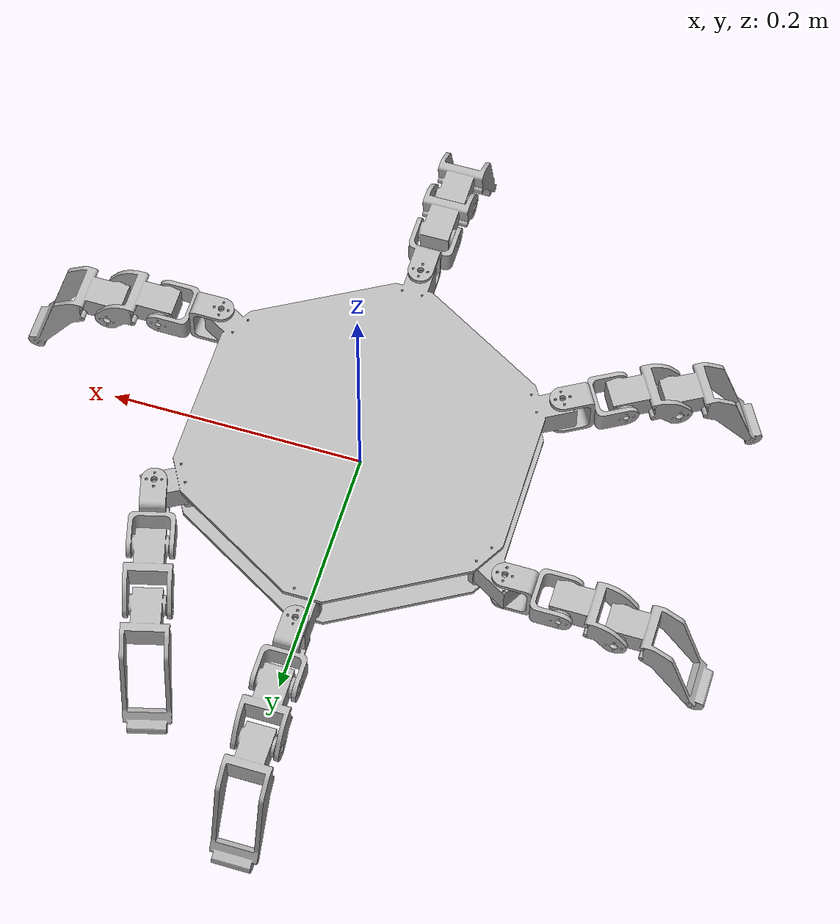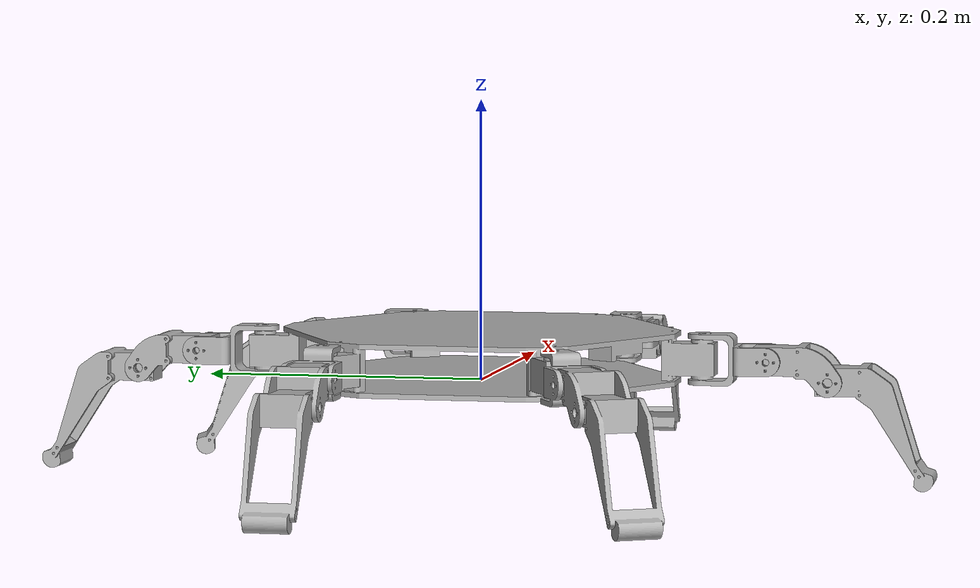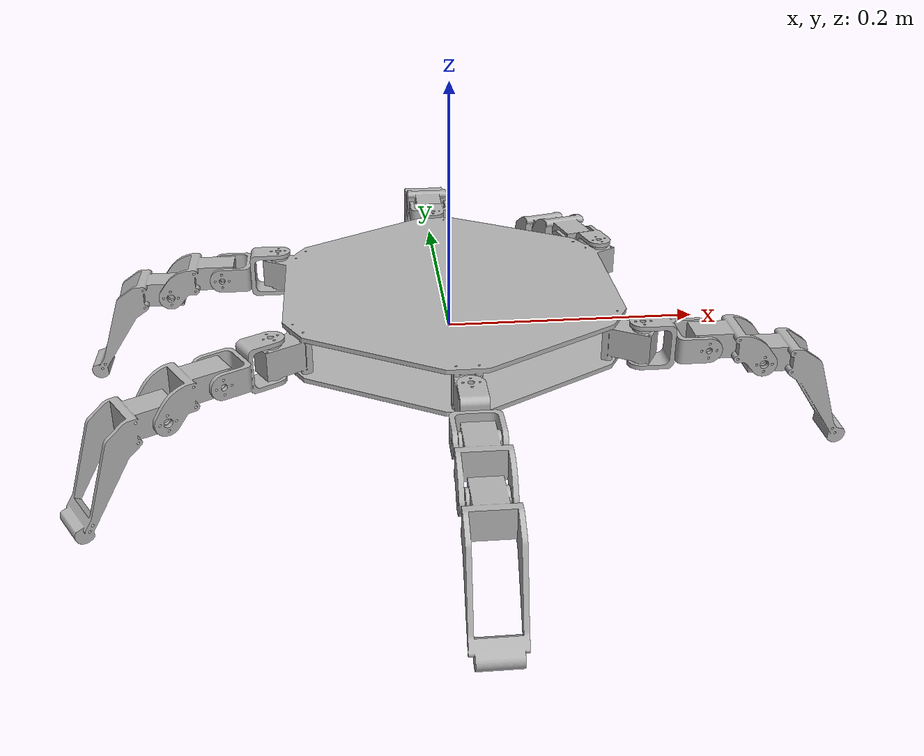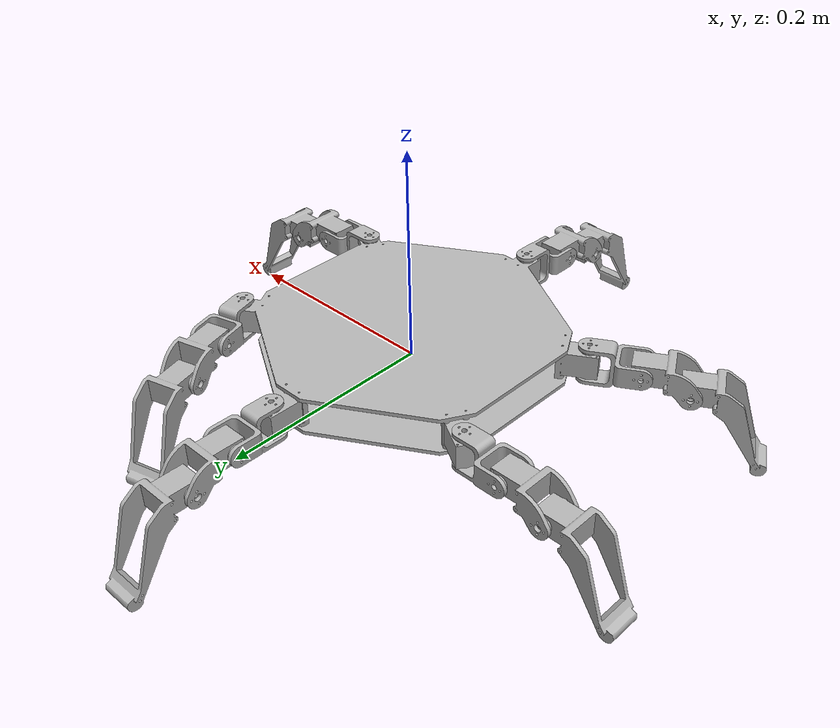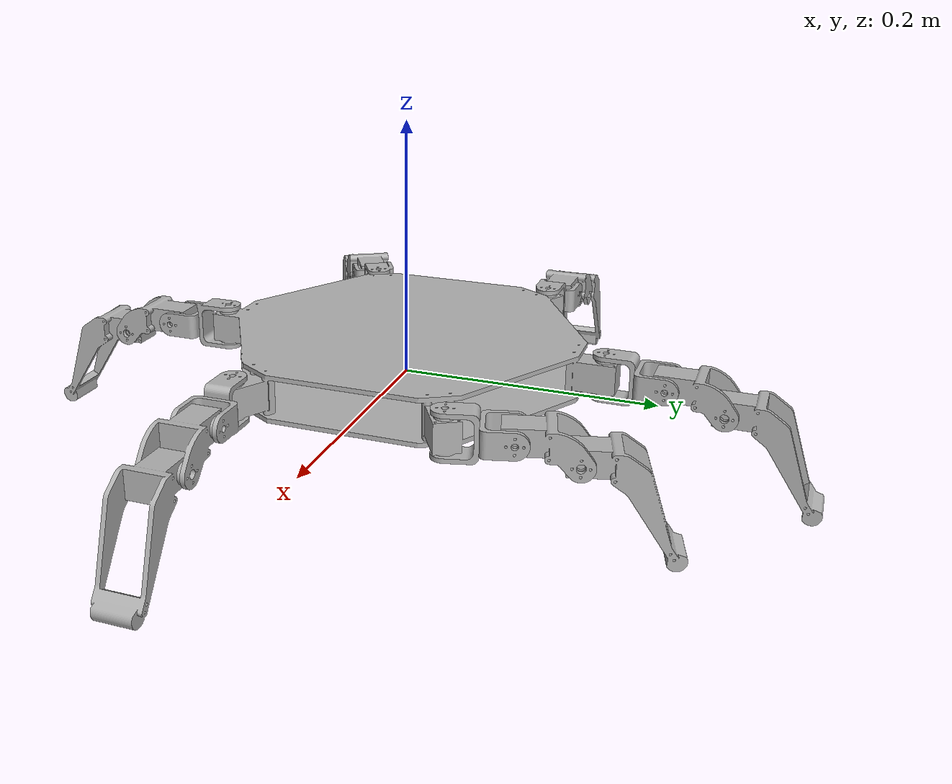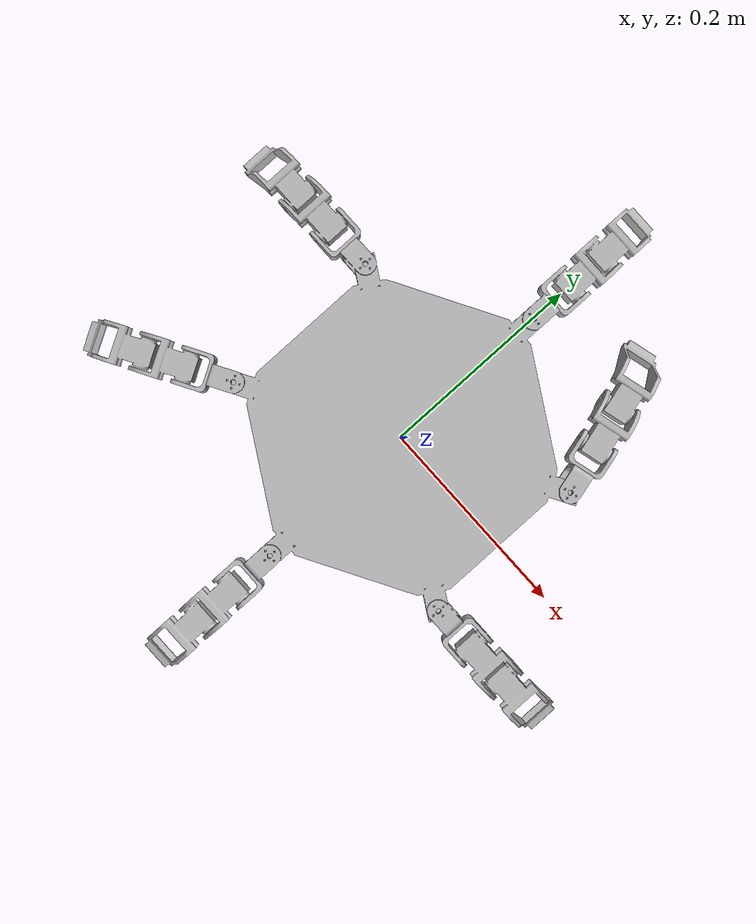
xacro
<?xml version="1.0" ?>
<robot name="(Unsaved)" xmlns:xacro="http://www.ros.org/wiki/xacro">

<xacro:include filename="$(find (Unsaved)_description)/urdf/materials.xacro" />
<xacro:include filename="$(find (Unsaved)_description)/urdf/(Unsaved).trans" />
<xacro:include filename="$(find (Unsaved)_description)/urdf/(Unsaved).gazebo" />
<link name="base_link">
  <inertial>
    <origin xyz="6.436791772353176e-13 8.68856977186487e-06 0.08813353689622172" rpy="0 0 0"/>
    <mass value="4.063687233537527"/>
    <inertia ixx="0.025602" iyy="0.025607" izz="0.049318" ixy="0.0" iyz="-0.0" ixz="0.0"/>
  </inertial>
  <visual>
    <origin xyz="0 0 0" rpy="0 0 0"/>
    <geometry>
      <mesh filename="package://(Unsaved)_description/meshes/base_link.stl" scale="0.001 0.001 0.001"/>
    </geometry>
    <material name="silver"/>
  </visual>
  <collision>
    <origin xyz="0 0 0" rpy="0 0 0"/>
    <geometry>
      <mesh filename="package://(Unsaved)_description/meshes/base_link.stl" scale="0.001 0.001 0.001"/>
    </geometry>
  </collision>
</link>

<link name="Coxa_6">
  <inertial>
    <origin xyz="-0.020352080722285504 -0.011750115472622377 -0.05563100010386053" rpy="0 0 0"/>
    <mass value="0.09724812532903056"/>
    <inertia ixx="2.5e-05" iyy="3e-05" izz="3.2e-05" ixy="-4e-06" iyz="0.0" ixz="0.0"/>
  </inertial>
  <visual>
    <origin xyz="0.137878 0.079604 -0.143762" rpy="0 0 0"/>
    <geometry>
      <mesh filename="package://(Unsaved)_description/meshes/Coxa_6.stl" scale="0.001 0.001 0.001"/>
    </geometry>
    <material name="silver"/>
  </visual>
  <collision>
    <origin xyz="0.137878 0.079604 -0.143762" rpy="0 0 0"/>
    <geometry>
      <mesh filename="package://(Unsaved)_description/meshes/Coxa_6.stl" scale="0.001 0.001 0.001"/>
    </geometry>
  </collision>
</link>

<link name="Coxa_1">
  <inertial>
    <origin xyz="-5.562159473445608e-08 -0.023500327284672773 -0.05563100010386053" rpy="0 0 0"/>
    <mass value="0.09724812532903056"/>
    <inertia ixx="3.2e-05" iyy="2.2e-05" izz="3.2e-05" ixy="0.0" iyz="0.0" ixz="-0.0"/>
  </inertial>
  <visual>
    <origin xyz="-0.0 0.159208 -0.143762" rpy="0 0 0"/>
    <geometry>
      <mesh filename="package://(Unsaved)_description/meshes/Coxa_1.stl" scale="0.001 0.001 0.001"/>
    </geometry>
    <material name="silver"/>
  </visual>
  <collision>
    <origin xyz="-0.0 0.159208 -0.143762" rpy="0 0 0"/>
    <geometry>
      <mesh filename="package://(Unsaved)_description/meshes/Coxa_1.stl" scale="0.001 0.001 0.001"/>
    </geometry>
  </collision>
</link>

<link name="Coxa_2">
  <inertial>
    <origin xyz="0.02350045593286834 -2.1922543673447148e-07 -0.05563100010386053" rpy="0 0 0"/>
    <mass value="0.09724812532903056"/>
    <inertia ixx="2.2e-05" iyy="3.2e-05" izz="3.2e-05" ixy="-0.0" iyz="-0.0" ixz="-0.0"/>
  </inertial>
  <visual>
    <origin xyz="-0.137878 0.079604 -0.143762" rpy="0 0 0"/>
    <geometry>
      <mesh filename="package://(Unsaved)_description/meshes/Coxa_2.stl" scale="0.001 0.001 0.001"/>
    </geometry>
    <material name="silver"/>
  </visual>
  <collision>
    <origin xyz="-0.137878 0.079604 -0.143762" rpy="0 0 0"/>
    <geometry>
      <mesh filename="package://(Unsaved)_description/meshes/Coxa_2.stl" scale="0.001 0.001 0.001"/>
    </geometry>
  </collision>
</link>

<link name="Coxa_3">
  <inertial>
    <origin xyz="0.02035208072228556 0.011750115472622377 -0.05563100010386053" rpy="0 0 0"/>
    <mass value="0.09724812532903056"/>
    <inertia ixx="2.5e-05" iyy="3e-05" izz="3.2e-05" ixy="-4e-06" iyz="-0.0" ixz="-0.0"/>
  </inertial>
  <visual>
    <origin xyz="-0.137878 -0.079604 -0.143762" rpy="0 0 0"/>
    <geometry>
      <mesh filename="package://(Unsaved)_description/meshes/Coxa_3.stl" scale="0.001 0.001 0.001"/>
    </geometry>
    <material name="silver"/>
  </visual>
  <collision>
    <origin xyz="-0.137878 -0.079604 -0.143762" rpy="0 0 0"/>
    <geometry>
      <mesh filename="package://(Unsaved)_description/meshes/Coxa_3.stl" scale="0.001 0.001 0.001"/>
    </geometry>
  </collision>
</link>

<link name="Coxa_4">
  <inertial>
    <origin xyz="5.562159475807144e-08 0.02350032728467269 -0.05563100010386053" rpy="0 0 0"/>
    <mass value="0.09724812532903056"/>
    <inertia ixx="3.2e-05" iyy="2.2e-05" izz="3.2e-05" ixy="0.0" iyz="-0.0" ixz="0.0"/>
  </inertial>
  <visual>
    <origin xyz="-0.0 -0.159208 -0.143762" rpy="0 0 0"/>
    <geometry>
      <mesh filename="package://(Unsaved)_description/meshes/Coxa_4.stl" scale="0.001 0.001 0.001"/>
    </geometry>
    <material name="silver"/>
  </visual>
  <collision>
    <origin xyz="-0.0 -0.159208 -0.143762" rpy="0 0 0"/>
    <geometry>
      <mesh filename="package://(Unsaved)_description/meshes/Coxa_4.stl" scale="0.001 0.001 0.001"/>
    </geometry>
  </collision>
</link>

<link name="Coxa_5">
  <inertial>
    <origin xyz="-0.02350045593286834 2.1922543678998263e-07 -0.05563100010386053" rpy="0 0 0"/>
    <mass value="0.09724812532903056"/>
    <inertia ixx="2.2e-05" iyy="3.2e-05" izz="3.2e-05" ixy="-0.0" iyz="0.0" ixz="0.0"/>
  </inertial>
  <visual>
    <origin xyz="0.137878 -0.079604 -0.143762" rpy="0 0 0"/>
    <geometry>
      <mesh filename="package://(Unsaved)_description/meshes/Coxa_5.stl" scale="0.001 0.001 0.001"/>
    </geometry>
    <material name="silver"/>
  </visual>
  <collision>
    <origin xyz="0.137878 -0.079604 -0.143762" rpy="0 0 0"/>
    <geometry>
      <mesh filename="package://(Unsaved)_description/meshes/Coxa_5.stl" scale="0.001 0.001 0.001"/>
    </geometry>
  </collision>
</link>

<link name="Femur_2">
  <inertial>
    <origin xyz="0.15714461044686726 -0.18487816360384196 -0.0707642936485353" rpy="0 0 0"/>
    <mass value="0.18493846398077138"/>
    <inertia ixx="2.8e-05" iyy="5e-05" izz="6e-05" ixy="0.0" iyz="-0.0" ixz="6e-06"/>
  </inertial>
  <visual>
    <origin xyz="-0.042774 -0.105274 -0.157762" rpy="0 0 0"/>
    <geometry>
      <mesh filename="package://(Unsaved)_description/meshes/Femur_2.stl" scale="0.001 0.001 0.001"/>
    </geometry>
    <material name="silver"/>
  </visual>
  <collision>
    <origin xyz="-0.042774 -0.105274 -0.157762" rpy="0 0 0"/>
    <geometry>
      <mesh filename="package://(Unsaved)_description/meshes/Femur_2.stl" scale="0.001 0.001 0.001"/>
    </geometry>
  </collision>
</link>

<link name="Femur_3">
  <inertial>
    <origin xyz="0.38891880578638915 0.009962240899335978 -0.07076429364853531" rpy="0 0 0"/>
    <mass value="0.18493846398077138"/>
    <inertia ixx="3.3e-05" iyy="4.4e-05" izz="6e-05" ixy="-1e-05" iyz="3e-06" ixz="5e-06"/>
  </inertial>
  <visual>
    <origin xyz="0.197312 -0.100662 -0.157762" rpy="0 0 0"/>
    <geometry>
      <mesh filename="package://(Unsaved)_description/meshes/Femur_3.stl" scale="0.001 0.001 0.001"/>
    </geometry>
    <material name="silver"/>
  </visual>
  <collision>
    <origin xyz="0.197312 -0.100662 -0.157762" rpy="0 0 0"/>
    <geometry>
      <mesh filename="package://(Unsaved)_description/meshes/Femur_3.stl" scale="0.001 0.001 0.001"/>
    </geometry>
  </collision>
</link>

<link name="Femur_4">
  <inertial>
    <origin xyz="0.01450000000000005 0.45745648179867177 -0.0707642936485353" rpy="0 0 0"/>
    <mass value="0.18493846398077138"/>
    <inertia ixx="5e-05" iyy="2.8e-05" izz="6e-05" ixy="-0.0" iyz="6e-06" ixz="0.0"/>
  </inertial>
  <visual>
    <origin xyz="0.0145 0.236208 -0.157762" rpy="0 0 0"/>
    <geometry>
      <mesh filename="package://(Unsaved)_description/meshes/Femur_4.stl" scale="0.001 0.001 0.001"/>
    </geometry>
    <material name="silver"/>
  </visual>
  <collision>
    <origin xyz="0.0145 0.236208 -0.157762" rpy="0 0 0"/>
    <geometry>
      <mesh filename="package://(Unsaved)_description/meshes/Femur_4.stl" scale="0.001 0.001 0.001"/>
    </geometry>
  </collision>
</link>

<link name="Femur_5">
  <inertial>
    <origin xyz="-0.3453526104468674 -0.184878836396158 -0.0707642936485353" rpy="0 0 0"/>
    <mass value="0.18493846398077138"/>
    <inertia ixx="2.8e-05" iyy="5e-05" izz="6e-05" ixy="0.0" iyz="0.0" ixz="-6e-06"/>
  </inertial>
  <visual>
    <origin xyz="-0.145434 -0.264483 -0.157762" rpy="0 0 0"/>
    <geometry>
      <mesh filename="package://(Unsaved)_description/meshes/Femur_5.stl" scale="0.001 0.001 0.001"/>
    </geometry>
    <material name="silver"/>
  </visual>
  <collision>
    <origin xyz="-0.145434 -0.264483 -0.157762" rpy="0 0 0"/>
    <geometry>
      <mesh filename="package://(Unsaved)_description/meshes/Femur_5.stl" scale="0.001 0.001 0.001"/>
    </geometry>
  </collision>
</link>

<link name="Femur_6">
  <inertial>
    <origin xyz="-0.03175580578638865 -0.2161712408993359 -0.0707642936485353" rpy="0 0 0"/>
    <mass value="0.18493846398077138"/>
    <inertia ixx="3.3e-05" iyy="4.4e-05" izz="6e-05" ixy="-1e-05" iyz="-3e-06" ixz="-5e-06"/>
  </inertial>
  <visual>
    <origin xyz="0.159851 -0.105547 -0.157762" rpy="0 0 0"/>
    <geometry>
      <mesh filename="package://(Unsaved)_description/meshes/Femur_6.stl" scale="0.001 0.001 0.001"/>
    </geometry>
    <material name="silver"/>
  </visual>
  <collision>
    <origin xyz="0.159851 -0.105547 -0.157762" rpy="0 0 0"/>
    <geometry>
      <mesh filename="package://(Unsaved)_description/meshes/Femur_6.stl" scale="0.001 0.001 0.001"/>
    </geometry>
  </collision>
</link>

<link name="Femur_1">
  <inertial>
    <origin xyz="0.014499999999999985 -0.04504048179867179 -0.0707642936485353" rpy="0 0 0"/>
    <mass value="0.18493846398077138"/>
    <inertia ixx="5e-05" iyy="2.8e-05" izz="6e-05" ixy="-0.0" iyz="-6e-06" ixz="-0.0"/>
  </inertial>
  <visual>
    <origin xyz="0.0145 0.176208 -0.157762" rpy="0 0 0"/>
    <geometry>
      <mesh filename="package://(Unsaved)_description/meshes/Femur_1.stl" scale="0.001 0.001 0.001"/>
    </geometry>
    <material name="silver"/>
  </visual>
  <collision>
    <origin xyz="0.0145 0.176208 -0.157762" rpy="0 0 0"/>
    <geometry>
      <mesh filename="package://(Unsaved)_description/meshes/Femur_1.stl" scale="0.001 0.001 0.001"/>
    </geometry>
  </collision>
</link>

<link name="Tibia_3">
  <inertial>
    <origin xyz="0.509230767163375 0.03563522060723821 -0.08593891627199479" rpy="0 0 0"/>
    <mass value="0.25344458673845177"/>
    <inertia ixx="0.000236" iyy="0.000295" izz="0.000178" ixy="-5.2e-05" iyz="7e-05" ixz="0.000122"/>
  </inertial>
  <visual>
    <origin xyz="0.269376 -0.102845 -0.144336" rpy="0 0 0"/>
    <geometry>
      <mesh filename="package://(Unsaved)_description/meshes/Tibia_3.stl" scale="0.001 0.001 0.001"/>
    </geometry>
    <material name="silver"/>
  </visual>
  <collision>
    <origin xyz="0.269376 -0.102845 -0.144336" rpy="0 0 0"/>
    <geometry>
      <mesh filename="package://(Unsaved)_description/meshes/Tibia_3.stl" scale="0.001 0.001 0.001"/>
    </geometry>
  </collision>
</link>

<link name="Tibia_4">
  <inertial>
    <origin xyz="0.01499999461414578 0.5966684318859028 -0.08593891627199479" rpy="0 0 0"/>
    <mass value="0.25344458673845177"/>
    <inertia ixx="0.000325" iyy="0.000206" izz="0.000178" ixy="0.0" iyz="0.00014" ixz="0.0"/>
  </inertial>
  <visual>
    <origin xyz="0.015 0.319708 -0.144336" rpy="0 0 0"/>
    <geometry>
      <mesh filename="package://(Unsaved)_description/meshes/Tibia_4.stl" scale="0.001 0.001 0.001"/>
    </geometry>
    <material name="silver"/>
  </visual>
  <collision>
    <origin xyz="0.015 0.319708 -0.144336" rpy="0 0 0"/>
    <geometry>
      <mesh filename="package://(Unsaved)_description/meshes/Tibia_4.stl" scale="0.001 0.001 0.001"/>
    </geometry>
  </collision>
</link>

<link name="Tibia_5">
  <inertial>
    <origin xyz="-0.4415645605340984 -0.22837884178201232 -0.08593891627199479" rpy="0 0 0"/>
    <mass value="0.25344458673845177"/>
    <inertia ixx="0.000206" iyy="0.000325" izz="0.000178" ixy="-0.0" iyz="0.0" ixz="-0.00014"/>
  </inertial>
  <visual>
    <origin xyz="-0.185934 -0.307983 -0.144336" rpy="0 0 0"/>
    <geometry>
      <mesh filename="package://(Unsaved)_description/meshes/Tibia_5.stl" scale="0.001 0.001 0.001"/>
    </geometry>
    <material name="silver"/>
  </visual>
  <collision>
    <origin xyz="-0.185934 -0.307983 -0.144336" rpy="0 0 0"/>
    <geometry>
      <mesh filename="package://(Unsaved)_description/meshes/Tibia_5.stl" scale="0.001 0.001 0.001"/>
    </geometry>
  </collision>
</link>

<link name="Tibia_6">
  <inertial>
    <origin xyz="-0.09172276716337444 -0.3113252206072381 -0.08593891627199479" rpy="0 0 0"/>
    <mass value="0.25344458673845177"/>
    <inertia ixx="0.000236" iyy="0.000295" izz="0.000178" ixy="-5.2e-05" iyz="-7e-05" ixz="-0.000122"/>
  </inertial>
  <visual>
    <origin xyz="0.148132 -0.172845 -0.144336" rpy="0 0 0"/>
    <geometry>
      <mesh filename="package://(Unsaved)_description/meshes/Tibia_6.stl" scale="0.001 0.001 0.001"/>
    </geometry>
    <material name="silver"/>
  </visual>
  <collision>
    <origin xyz="0.148132 -0.172845 -0.144336" rpy="0 0 0"/>
    <geometry>
      <mesh filename="package://(Unsaved)_description/meshes/Tibia_6.stl" scale="0.001 0.001 0.001"/>
    </geometry>
  </collision>
</link>

<link name="Tibia_1">
  <inertial>
    <origin xyz="0.015000005385854264 -0.09725243188590285 -0.08593891627199479" rpy="0 0 0"/>
    <mass value="0.25344458673845177"/>
    <inertia ixx="0.000325" iyy="0.000206" izz="0.000178" ixy="0.0" iyz="-0.00014" ixz="-0.0"/>
  </inertial>
  <visual>
    <origin xyz="0.015 0.179708 -0.144336" rpy="0 0 0"/>
    <geometry>
      <mesh filename="package://(Unsaved)_description/meshes/Tibia_1.stl" scale="0.001 0.001 0.001"/>
    </geometry>
    <material name="silver"/>
  </visual>
  <collision>
    <origin xyz="0.015 0.179708 -0.144336" rpy="0 0 0"/>
    <geometry>
      <mesh filename="package://(Unsaved)_description/meshes/Tibia_1.stl" scale="0.001 0.001 0.001"/>
    </geometry>
  </collision>
</link>

<link name="Tibia_2">
  <inertial>
    <origin xyz="0.25235656053409833 -0.2283781582179876 -0.08593891627199479" rpy="0 0 0"/>
    <mass value="0.25344458673845177"/>
    <inertia ixx="0.000206" iyy="0.000325" izz="0.000178" ixy="-0.0" iyz="-0.0" ixz="0.00014"/>
  </inertial>
  <visual>
    <origin xyz="-0.003274 -0.148774 -0.144336" rpy="0 0 0"/>
    <geometry>
      <mesh filename="package://(Unsaved)_description/meshes/Tibia_2.stl" scale="0.001 0.001 0.001"/>
    </geometry>
    <material name="silver"/>
  </visual>
  <collision>
    <origin xyz="-0.003274 -0.148774 -0.144336" rpy="0 0 0"/>
    <geometry>
      <mesh filename="package://(Unsaved)_description/meshes/Tibia_2.stl" scale="0.001 0.001 0.001"/>
    </geometry>
  </collision>
</link>

<joint name="Revolute 1" type="revolute">
  <origin xyz="-0.137878 -0.079604 0.143762" rpy="0 0 0"/>
  <parent link="base_link"/>
  <child link="Coxa_6"/>
  <axis xyz="-0.0 -0.0 1.0"/>
  <limit upper="1.570796" lower="-1.570796" effort="100" velocity="100"/>
</joint>

<joint name="Revolute 2" type="revolute">
  <origin xyz="0.0 -0.159208 0.143762" rpy="0 0 0"/>
  <parent link="base_link"/>
  <child link="Coxa_1"/>
  <axis xyz="-0.0 -0.0 1.0"/>
  <limit upper="1.570796" lower="-1.570796" effort="100" velocity="100"/>
</joint>

<joint name="Revolute 3" type="revolute">
  <origin xyz="0.137878 -0.079604 0.143762" rpy="0 0 0"/>
  <parent link="base_link"/>
  <child link="Coxa_2"/>
  <axis xyz="-0.0 -0.0 1.0"/>
  <limit upper="1.047198" lower="-0.523599" effort="100" velocity="100"/>
</joint>

<joint name="Revolute 4" type="revolute">
  <origin xyz="0.137878 0.079604 0.143762" rpy="0 0 0"/>
  <parent link="base_link"/>
  <child link="Coxa_3"/>
  <axis xyz="-0.0 -0.0 1.0"/>
  <limit upper="2.094395" lower="0.523599" effort="100" velocity="100"/>
</joint>

<joint name="Revolute 5" type="revolute">
  <origin xyz="0.0 0.159208 0.143762" rpy="0 0 0"/>
  <parent link="base_link"/>
  <child link="Coxa_4"/>
  <axis xyz="-0.0 -0.0 1.0"/>
  <limit upper="1.570796" lower="-1.570796" effort="100" velocity="100"/>
</joint>

<joint name="Revolute 6" type="revolute">
  <origin xyz="-0.137878 0.079604 0.143762" rpy="0 0 0"/>
  <parent link="base_link"/>
  <child link="Coxa_5"/>
  <axis xyz="-0.0 -0.0 1.0"/>
  <limit upper="1.047198" lower="-2.094395" effort="100" velocity="100"/>
</joint>

<joint name="Revolute 7" type="revolute">
  <origin xyz="-0.095104 0.184878 0.014" rpy="0 0 0"/>
  <parent link="Coxa_2"/>
  <child link="Femur_2"/>
  <axis xyz="0.0 -1.0 -0.0"/>
  <limit upper="0.0" lower="-2.094395" effort="100" velocity="100"/>
</joint>

<joint name="Revolute 8" type="revolute">
  <origin xyz="-0.33519 0.021058 0.014" rpy="0 0 0"/>
  <parent link="Coxa_3"/>
  <child link="Femur_3"/>
  <axis xyz="0.5 -0.866025 0.0"/>
  <limit upper="0.0" lower="-2.094395" effort="100" velocity="100"/>
</joint>

<joint name="Revolute 9" type="revolute">
  <origin xyz="-0.0145 -0.395416 0.014" rpy="0 0 0"/>
  <parent link="Coxa_4"/>
  <child link="Femur_4"/>
  <axis xyz="1.0 0.0 -0.0"/>
  <limit upper="1.570796" lower="-2.094395" effort="100" velocity="100"/>
</joint>

<joint name="Revolute 10" type="revolute">
  <origin xyz="0.283312 0.184879 0.014" rpy="0 0 0"/>
  <parent link="Coxa_5"/>
  <child link="Femur_5"/>
  <axis xyz="-0.0 1.0 -0.0"/>
  <limit upper="1.570796" lower="-2.094395" effort="100" velocity="100"/>
</joint>

<joint name="Revolute 11" type="revolute">
  <origin xyz="-0.021973 0.185151 0.014" rpy="0 0 0"/>
  <parent link="Coxa_6"/>
  <child link="Femur_6"/>
  <axis xyz="0.5 -0.866025 -0.0"/>
  <limit upper="2.094395" lower="-1.570796" effort="100" velocity="100"/>
</joint>

<joint name="Revolute 12" type="revolute">
  <origin xyz="-0.0145 -0.017 0.014" rpy="0 0 0"/>
  <parent link="Coxa_1"/>
  <child link="Femur_1"/>
  <axis xyz="-1.0 -0.0 -0.0"/>
  <limit upper="1.570796" lower="-2.094395" effort="100" velocity="100"/>
</joint>

<joint name="Revolute 13" type="revolute">
  <origin xyz="-0.072064 0.002183 -0.013426" rpy="0 0 0"/>
  <parent link="Femur_3"/>
  <child link="Tibia_3"/>
  <axis xyz="-0.5 0.866025 -0.0"/>
  <limit upper="2.094395" lower="-1.22173" effort="100" velocity="100"/>
</joint>

<joint name="Revolute 14" type="revolute">
  <origin xyz="-0.0005 -0.0835 -0.013426" rpy="0 0 0"/>
  <parent link="Femur_4"/>
  <child link="Tibia_4"/>
  <axis xyz="-1.0 0.0 -0.0"/>
  <limit upper="2.094395" lower="-1.22173" effort="100" velocity="100"/>
</joint>

<joint name="Revolute 15" type="revolute">
  <origin xyz="0.0405 0.0435 -0.013426" rpy="0 0 0"/>
  <parent link="Femur_5"/>
  <child link="Tibia_5"/>
  <axis xyz="0.0 -1.0 0.0"/>
  <limit upper="2.094395" lower="-1.22173" effort="100" velocity="100"/>
</joint>

<joint name="Revolute 16" type="revolute">
  <origin xyz="0.011719 0.067298 -0.013426" rpy="0 0 0"/>
  <parent link="Femur_6"/>
  <child link="Tibia_6"/>
  <axis xyz="0.5 -0.866025 -0.0"/>
  <limit upper="2.094395" lower="-1.22173" effort="100" velocity="100"/>
</joint>

<joint name="Revolute 17" type="revolute">
  <origin xyz="-0.0005 -0.0035 -0.013426" rpy="0 0 0"/>
  <parent link="Femur_1"/>
  <child link="Tibia_1"/>
  <axis xyz="1.0 -0.0 -0.0"/>
  <limit upper="2.094395" lower="-1.22173" effort="100" velocity="100"/>
</joint>

<joint name="Revolute 18" type="revolute">
  <origin xyz="-0.0395 0.0435 -0.013426" rpy="0 0 0"/>
  <parent link="Femur_2"/>
  <child link="Tibia_2"/>
  <axis xyz="-0.0 1.0 0.0"/>
  <limit upper="2.094395" lower="-1.22173" effort="100" velocity="100"/>
</joint>

</robot>

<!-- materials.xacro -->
<robot name="(Unsaved)" xmlns:xacro="http://www.ros.org/wiki/xacro" >

<material name="silver">
  <color rgba="0.700 0.700 0.700 1.000"/>
</material>

</robot>

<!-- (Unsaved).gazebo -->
<robot name="(Unsaved)" xmlns:xacro="http://www.ros.org/wiki/xacro" >

<xacro:property name="body_color" value="Gazebo/Silver" />

<gazebo>
  <plugin name="control" filename="libgazebo_ros_control.so"/>
</gazebo>
<gazebo reference="base_link">
  <material>${body_color}</material>
  <mu1>0.2</mu1>
  <mu2>0.2</mu2>
  <selfCollide>true</selfCollide>
  <gravity>true</gravity>
</gazebo>

<gazebo reference="Coxa_6">
  <material>${body_color}</material>
  <mu1>0.2</mu1>
  <mu2>0.2</mu2>
  <selfCollide>true</selfCollide>
</gazebo>

<gazebo reference="Coxa_1">
  <material>${body_color}</material>
  <mu1>0.2</mu1>
  <mu2>0.2</mu2>
  <selfCollide>true</selfCollide>
</gazebo>

<gazebo reference="Coxa_2">
  <material>${body_color}</material>
  <mu1>0.2</mu1>
  <mu2>0.2</mu2>
  <selfCollide>true</selfCollide>
</gazebo>

<gazebo reference="Coxa_3">
  <material>${body_color}</material>
  <mu1>0.2</mu1>
  <mu2>0.2</mu2>
  <selfCollide>true</selfCollide>
</gazebo>

<gazebo reference="Coxa_4">
  <material>${body_color}</material>
  <mu1>0.2</mu1>
  <mu2>0.2</mu2>
  <selfCollide>true</selfCollide>
</gazebo>

<gazebo reference="Coxa_5">
  <material>${body_color}</material>
  <mu1>0.2</mu1>
  <mu2>0.2</mu2>
  <selfCollide>true</selfCollide>
</gazebo>

<gazebo reference="Femur_2">
  <material>${body_color}</material>
  <mu1>0.2</mu1>
  <mu2>0.2</mu2>
  <selfCollide>true</selfCollide>
</gazebo>

<gazebo reference="Femur_3">
  <material>${body_color}</material>
  <mu1>0.2</mu1>
  <mu2>0.2</mu2>
  <selfCollide>true</selfCollide>
</gazebo>

<gazebo reference="Femur_4">
  <material>${body_color}</material>
  <mu1>0.2</mu1>
  <mu2>0.2</mu2>
  <selfCollide>true</selfCollide>
</gazebo>

<gazebo reference="Femur_5">
  <material>${body_color}</material>
  <mu1>0.2</mu1>
  <mu2>0.2</mu2>
  <selfCollide>true</selfCollide>
</gazebo>

<gazebo reference="Femur_6">
  <material>${body_color}</material>
  <mu1>0.2</mu1>
  <mu2>0.2</mu2>
  <selfCollide>true</selfCollide>
</gazebo>

<gazebo reference="Femur_1">
  <material>${body_color}</material>
  <mu1>0.2</mu1>
  <mu2>0.2</mu2>
  <selfCollide>true</selfCollide>
</gazebo>

<gazebo reference="Tibia_3">
  <material>${body_color}</material>
  <mu1>0.2</mu1>
  <mu2>0.2</mu2>
  <selfCollide>true</selfCollide>
</gazebo>

<gazebo reference="Tibia_4">
  <material>${body_color}</material>
  <mu1>0.2</mu1>
  <mu2>0.2</mu2>
  <selfCollide>true</selfCollide>
</gazebo>

<gazebo reference="Tibia_5">
  <material>${body_color}</material>
  <mu1>0.2</mu1>
  <mu2>0.2</mu2>
  <selfCollide>true</selfCollide>
</gazebo>

<gazebo reference="Tibia_6">
  <material>${body_color}</material>
  <mu1>0.2</mu1>
  <mu2>0.2</mu2>
  <selfCollide>true</selfCollide>
</gazebo>

<gazebo reference="Tibia_1">
  <material>${body_color}</material>
  <mu1>0.2</mu1>
  <mu2>0.2</mu2>
  <selfCollide>true</selfCollide>
</gazebo>

<gazebo reference="Tibia_2">
  <material>${body_color}</material>
  <mu1>0.2</mu1>
  <mu2>0.2</mu2>
  <selfCollide>true</selfCollide>
</gazebo>

</robot>
